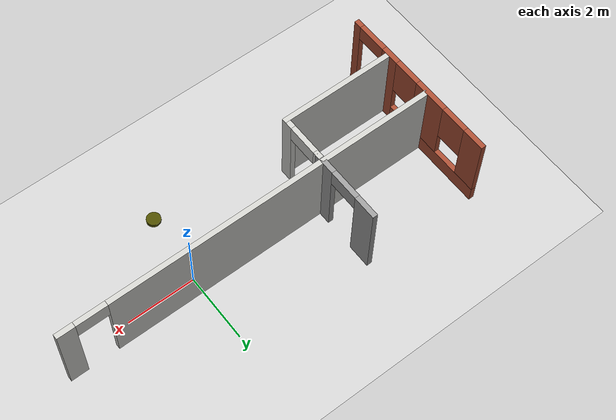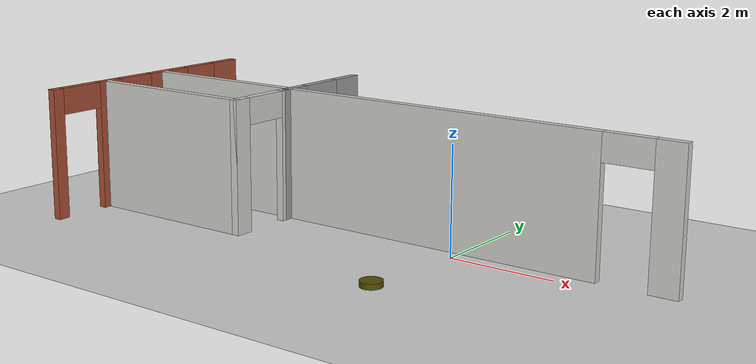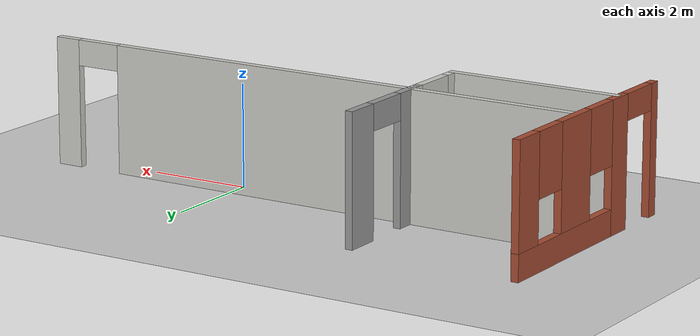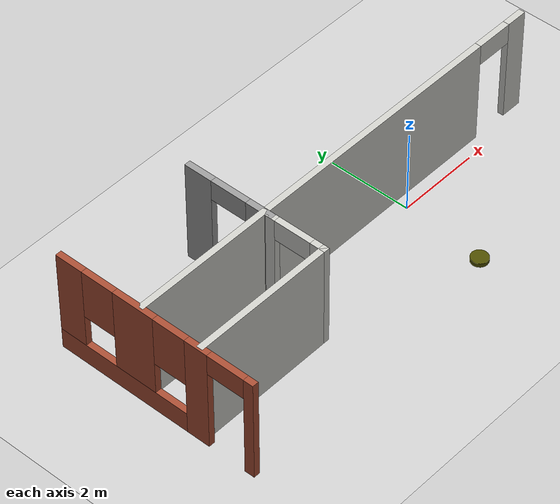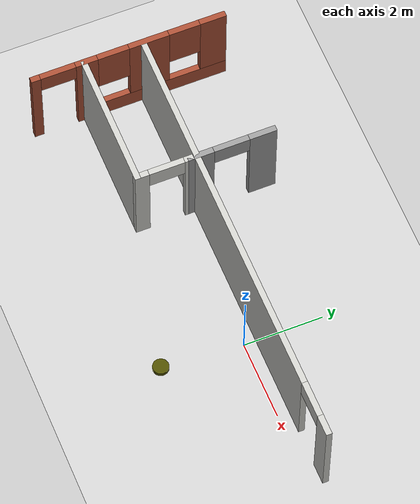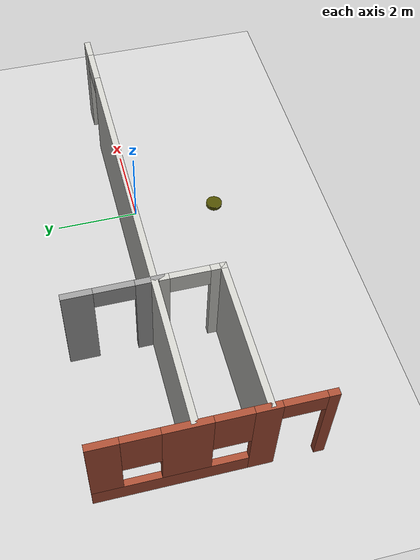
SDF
<sdf version="1.6">
 <world name="default">
  <model name="ground_plane">
   <static>1</static>
   <link name="link">
    <collision name="collision">
     <geometry><plane><normal>0 0 1</normal><size>100 100</size></plane></geometry>
     <surface><friction><ode><mu>100</mu><mu2>50</mu2></ode></friction></surface>
    </collision>
    <visual name="visual">
     <cast_shadows>0</cast_shadows>
     <geometry><plane><normal>0 0 1</normal><size>100 100</size></plane></geometry>
     <material>
      <script><uri>file://media/materials/scripts/gazebo.material</uri><name>Gazebo/Grey</name></script>
     </material>
    </visual>
   </link>
  </model>
  <model name="vacuumRobot_clone">
   <link name="link_1">
    <pose>0.031819 -5.91746 0.05875 0 -0 0</pose>
    <inertial>
     <mass>1</mass>
     <inertia><ixx>0.145833</ixx><ixy>0</ixy><ixz>0</ixz><iyy>0.145833</iyy><iyz>0</iyz><izz>0.125</izz></inertia>
    </inertial>
    <visual name="visual">
     <geometry><cylinder><radius>0.2</radius><length>0.1</length></cylinder></geometry>
     <material>
      <lighting>1</lighting>
      <script><uri>file://media/materials/scripts/gazebo.material</uri><name>Gazebo/Grey</name></script>
      <shader type="pixel"><normal_map>__default__</normal_map></shader>
      <ambient>0.3 0.3 0 1</ambient>
      <diffuse>0.7 0.7 0.7 1</diffuse>
      <specular>0.01 0.01 0.01 1</specular>
      <emissive>0 0 0 1</emissive>
     </material>
    </visual>
    <collision name="collision">
     <geometry><cylinder><radius>0.2</radius><length>0.1</length></cylinder></geometry>
     <surface>
      <friction>
       <ode><mu>1</mu><mu2>1</mu2><fdir1>0 0 0</fdir1><slip1>0</slip1><slip2>0</slip2></ode>
       <torsional>
        <coefficient>1</coefficient>
        <patch_radius>0</patch_radius>
        <surface_radius>0</surface_radius>
        <use_patch_radius>1</use_patch_radius>
        <ode><slip>0</slip></ode>
       </torsional>
      </friction>
      <bounce><restitution_coefficient>0</restitution_coefficient><threshold>1e+06</threshold></bounce>
      <contact>
       <collide_without_contact>0</collide_without_contact>
       <collide_without_contact_bitmask>1</collide_without_contact_bitmask>
       <collide_bitmask>1</collide_bitmask>
       <ode>
        <soft_cfm>0</soft_cfm>
        <soft_erp>0.2</soft_erp>
        <kp>1e+13</kp>
        <kd>1</kd>
        <max_vel>0.01</max_vel>
        <min_depth>0</min_depth>
       </ode>
       <bullet>
        <split_impulse>1</split_impulse>
        <split_impulse_penetration_threshold>-0.01</split_impulse_penetration_threshold>
        <soft_cfm>0</soft_cfm>
        <soft_erp>0.2</soft_erp>
        <kp>1e+13</kp>
        <kd>1</kd>
       </bullet>
      </contact>
     </surface>
    </collision>
   </link>
   <link name="link_2">
    <pose>0.201819 -5.91746 0.03875 0 -0 0</pose>
    <inertial>
     <mass>1</mass>
     <inertia><ixx>0.145833</ixx><ixy>0</ixy><ixz>0</ixz><iyy>0.145833</iyy><iyz>0</iyz><izz>0.125</izz></inertia>
    </inertial>
    <visual name="visual">
     <pose>0 0 0 1.5707 0 1.5707</pose>
     <geometry><cylinder><radius>0.04</radius><length>0.01</length></cylinder></geometry>
     <material>
      <lighting>1</lighting>
      <script><uri>file://media/materials/scripts/gazebo.material</uri><name>Gazebo/Grey</name></script>
      <shader type="pixel"><normal_map>__default__</normal_map></shader>
      <ambient>0.3 0.3 0.3 1</ambient>
      <diffuse>0.7 0.7 0.7 1</diffuse>
      <specular>0.01 0.01 0.01 1</specular>
      <emissive>0 0 0 1</emissive>
     </material>
    </visual>
    <collision name="collision">
     <pose>0 0 0 1.5707 0 1.5707</pose>
     <geometry><cylinder><radius>0.04</radius><length>0.01</length></cylinder></geometry>
     <surface>
      <friction>
       <ode><mu>1</mu><mu2>1</mu2><fdir1>0 0 0</fdir1><slip1>0</slip1><slip2>0</slip2></ode>
       <torsional>
        <coefficient>1</coefficient>
        <patch_radius>0</patch_radius>
        <surface_radius>0</surface_radius>
        <use_patch_radius>1</use_patch_radius>
        <ode><slip>0</slip></ode>
       </torsional>
      </friction>
      <bounce><restitution_coefficient>0</restitution_coefficient><threshold>1e+06</threshold></bounce>
      <contact>
       <collide_without_contact>0</collide_without_contact>
       <collide_without_contact_bitmask>1</collide_without_contact_bitmask>
       <collide_bitmask>1</collide_bitmask>
       <ode>
        <soft_cfm>0</soft_cfm>
        <soft_erp>0.2</soft_erp>
        <kp>1e+13</kp>
        <kd>1</kd>
        <max_vel>0.01</max_vel>
        <min_depth>0</min_depth>
       </ode>
       <bullet>
        <split_impulse>1</split_impulse>
        <split_impulse_penetration_threshold>-0.01</split_impulse_penetration_threshold>
        <soft_cfm>0</soft_cfm>
        <soft_erp>0.2</soft_erp>
        <kp>1e+13</kp>
        <kd>1</kd>
       </bullet>
      </contact>
     </surface>
    </collision>
   </link>
   <link name="link_2_clone">
    <pose>-0.138181 -5.91746 0.03875 0 -0 0</pose>
    <inertial>
     <mass>1</mass>
     <inertia><ixx>0.145833</ixx><ixy>0</ixy><ixz>0</ixz><iyy>0.145833</iyy><iyz>0</iyz><izz>0.125</izz></inertia>
    </inertial>
    <visual name="visual">
     <pose>0 0 0 1.5707 0 1.5707</pose>
     <geometry><cylinder><radius>0.04</radius><length>0.01</length></cylinder></geometry>
     <material>
      <lighting>1</lighting>
      <script><uri>file://media/materials/scripts/gazebo.material</uri><name>Gazebo/Grey</name></script>
      <shader type="pixel"><normal_map>__default__</normal_map></shader>
      <ambient>0.3 0.3 0.3 1</ambient>
      <diffuse>0.7 0.7 0.7 1</diffuse>
      <specular>0.01 0.01 0.01 1</specular>
      <emissive>0 0 0 1</emissive>
     </material>
    </visual>
    <collision name="collision">
     <pose>0 0 0 1.5707 0 1.5707</pose>
     <geometry><cylinder><radius>0.04</radius><length>0.01</length></cylinder></geometry>
     <surface>
      <friction>
       <ode><mu>1</mu><mu2>1</mu2><fdir1>0 0 0</fdir1><slip1>0</slip1><slip2>0</slip2></ode>
       <torsional>
        <coefficient>1</coefficient>
        <patch_radius>0</patch_radius>
        <surface_radius>0</surface_radius>
        <use_patch_radius>1</use_patch_radius>
        <ode><slip>0</slip></ode>
       </torsional>
      </friction>
      <bounce><restitution_coefficient>0</restitution_coefficient><threshold>1e+06</threshold></bounce>
      <contact>
       <collide_without_contact>0</collide_without_contact>
       <collide_without_contact_bitmask>1</collide_without_contact_bitmask>
       <collide_bitmask>1</collide_bitmask>
       <ode>
        <soft_cfm>0</soft_cfm>
        <soft_erp>0.2</soft_erp>
        <kp>1e+13</kp>
        <kd>1</kd>
        <max_vel>0.01</max_vel>
        <min_depth>0</min_depth>
       </ode>
       <bullet>
        <split_impulse>1</split_impulse>
        <split_impulse_penetration_threshold>-0.01</split_impulse_penetration_threshold>
        <soft_cfm>0</soft_cfm>
        <soft_erp>0.2</soft_erp>
        <kp>1e+13</kp>
        <kd>1</kd>
       </bullet>
      </contact>
     </surface>
    </collision>
   </link>
   <link name="link_3">
    <pose>0.031819 -5.74746 0.005 0 -0 0</pose>
    <inertial>
     <mass>1</mass>
     <inertia><ixx>0.1</ixx><ixy>0</ixy><ixz>0</ixz><iyy>0.1</iyy><iyz>0</iyz><izz>0.1</izz></inertia>
    </inertial>
    <visual name="visual">
     <geometry><sphere><radius>0.01</radius></sphere></geometry>
     <material>
      <lighting>1</lighting>
      <script><uri>file://media/materials/scripts/gazebo.material</uri><name>Gazebo/Grey</name></script>
      <shader type="pixel"><normal_map>__default__</normal_map></shader>
      <ambient>0.3 0.3 0.3 1</ambient>
      <diffuse>0.7 0.7 0.7 1</diffuse>
      <specular>0.01 0.01 0.01 1</specular>
      <emissive>0 0 0 1</emissive>
     </material>
    </visual>
    <collision name="collision">
     <geometry><sphere><radius>0.01</radius></sphere></geometry>
     <surface>
      <friction>
       <ode><mu>1</mu><mu2>1</mu2><fdir1>0 0 0</fdir1><slip1>0</slip1><slip2>0</slip2></ode>
       <torsional>
        <coefficient>1</coefficient>
        <patch_radius>0</patch_radius>
        <surface_radius>0</surface_radius>
        <use_patch_radius>1</use_patch_radius>
        <ode><slip>0</slip></ode>
       </torsional>
      </friction>
      <bounce><restitution_coefficient>0</restitution_coefficient><threshold>1e+06</threshold></bounce>
      <contact>
       <collide_without_contact>0</collide_without_contact>
       <collide_without_contact_bitmask>1</collide_without_contact_bitmask>
       <collide_bitmask>1</collide_bitmask>
       <ode>
        <soft_cfm>0</soft_cfm>
        <soft_erp>0.2</soft_erp>
        <kp>1e+13</kp>
        <kd>1</kd>
        <max_vel>0.01</max_vel>
        <min_depth>0</min_depth>
       </ode>
       <bullet>
        <split_impulse>1</split_impulse>
        <split_impulse_penetration_threshold>-0.01</split_impulse_penetration_threshold>
        <soft_cfm>0</soft_cfm>
        <soft_erp>0.2</soft_erp>
        <kp>1e+13</kp>
        <kd>1</kd>
       </bullet>
      </contact>
     </surface>
    </collision>
   </link>
   <joint name="link_1_JOINT_4" type="revolute">
    <parent>link_1</parent>
    <child>link_2</child>
    <axis>
     <xyz>1 0 0</xyz>
     <use_parent_model_frame>0</use_parent_model_frame>
     <limit>
      <lower>-1.79769e+308</lower>
      <upper>1.79769e+308</upper>
      <effort>-1</effort>
      <velocity>-1</velocity>
     </limit>
     <dynamics>
      <spring_reference>0</spring_reference>
      <spring_stiffness>0</spring_stiffness>
      <damping>0</damping>
      <friction>0</friction>
     </dynamics>
    </axis>
    <physics>
     <ode><limit><cfm>0</cfm><erp>0.2</erp></limit><suspension><cfm>0</cfm><erp>0.2</erp></suspension></ode>
    </physics>
   </joint>
   <joint name="link_1_JOINT_5" type="revolute">
    <parent>link_1</parent>
    <child>link_2_clone</child>
    <axis>
     <xyz>1 0 0</xyz>
     <use_parent_model_frame>0</use_parent_model_frame>
     <limit>
      <lower>-1.79769e+308</lower>
      <upper>1.79769e+308</upper>
      <effort>-1</effort>
      <velocity>-1</velocity>
     </limit>
     <dynamics>
      <spring_reference>0</spring_reference>
      <spring_stiffness>0</spring_stiffness>
      <damping>0</damping>
      <friction>0</friction>
     </dynamics>
    </axis>
    <physics>
     <ode><limit><cfm>0</cfm><erp>0.2</erp></limit><suspension><cfm>0</cfm><erp>0.2</erp></suspension></ode>
    </physics>
   </joint>
   <joint name="link_1_JOINT_6" type="revolute">
    <parent>link_1</parent>
    <child>link_3</child>
    <axis>
     <xyz>0 0 1</xyz>
     <use_parent_model_frame>0</use_parent_model_frame>
     <limit>
      <lower>-1.79769e+308</lower>
      <upper>1.79769e+308</upper>
      <effort>-1</effort>
      <velocity>-1</velocity>
     </limit>
     <dynamics>
      <spring_reference>0</spring_reference>
      <spring_stiffness>0</spring_stiffness>
      <damping>0</damping>
      <friction>0</friction>
     </dynamics>
    </axis>
    <physics>
     <ode><limit><cfm>0</cfm><erp>0.2</erp></limit><suspension><cfm>0</cfm><erp>0.2</erp></suspension></ode>
    </physics>
   </joint>
   <static>0</static>
   <pose>-0.204778 3.87633 0.131506 0.022012 2e-06 -0.000814</pose>
  </model>
  <model name="buildingMyHouse">
   <link name="Wall_34">
    <pose>-7.425 -0.022893 0 0 -0 1.5708</pose>
    <visual name="Wall_34_Visual_0">
     <pose>-2.38147 0 1.25 0 -0 0</pose>
     <geometry><box><size>0.237054 0.15 2.5</size></box></geometry>
     <material>
      <script><uri>file://media/materials/scripts/gazebo.material</uri><name>Gazebo/Bricks</name></script>
      <ambient>1 1 1 1</ambient>
      <shader type="pixel"/>
      <diffuse>1 1 1 1</diffuse>
      <specular>0.2 0.2 0.2 1</specular>
      <emissive>0 0 0 1</emissive>
     </material>
     <meta><layer>0</layer></meta>
    </visual>
    <visual name="Wall_34_Visual_1">
     <pose>-1.08246 0 1.25 0 -0 0</pose>
     <geometry><box><size>0.560967 0.15 2.5</size></box></geometry>
     <material>
      <script><uri>file://media/materials/scripts/gazebo.material</uri><name>Gazebo/Bricks</name></script>
      <ambient>1 1 1 1</ambient>
      <shader type="pixel"/>
      <diffuse>1 1 1 1</diffuse>
      <specular>0.2 0.2 0.2 1</specular>
      <emissive>0 0 0 1</emissive>
     </material>
     <meta><layer>0</layer></meta>
    </visual>
    <visual name="Wall_34_Visual_2">
     <pose>0.849011 0 0.25 0 -0 0</pose>
     <geometry><box><size>3.30198 0.15 0.5</size></box></geometry>
     <material>
      <script><uri>file://media/materials/scripts/gazebo.material</uri><name>Gazebo/Bricks</name></script>
      <ambient>1 1 1 1</ambient>
      <shader type="pixel"/>
      <diffuse>1 1 1 1</diffuse>
      <specular>0.2 0.2 0.2 1</specular>
      <emissive>0 0 0 1</emissive>
     </material>
     <meta><layer>0</layer></meta>
    </visual>
    <visual name="Wall_34_Visual_3">
     <pose>0.51168 0 1.5 0 -0 0</pose>
     <geometry><box><size>1.02732 0.15 2</size></box></geometry>
     <material>
      <script><uri>file://media/materials/scripts/gazebo.material</uri><name>Gazebo/Bricks</name></script>
      <ambient>1 1 1 1</ambient>
      <shader type="pixel"/>
      <diffuse>1 1 1 1</diffuse>
      <specular>0.2 0.2 0.2 1</specular>
      <emissive>0 0 0 1</emissive>
     </material>
     <meta><layer>0</layer></meta>
    </visual>
    <visual name="Wall_34_Visual_4">
     <pose>2.16267 0 1.5 0 -0 0</pose>
     <geometry><box><size>0.674661 0.15 2</size></box></geometry>
     <material>
      <script><uri>file://media/materials/scripts/gazebo.material</uri><name>Gazebo/Bricks</name></script>
      <ambient>1 1 1 1</ambient>
      <shader type="pixel"/>
      <diffuse>1 1 1 1</diffuse>
      <specular>0.2 0.2 0.2 1</specular>
      <emissive>0 0 0 1</emissive>
     </material>
     <meta><layer>0</layer></meta>
    </visual>
    <visual name="Wall_34_Visual_5">
     <pose>-0.401979 0 1.9 0 -0 0</pose>
     <geometry><box><size>0.8 0.15 1.2</size></box></geometry>
     <material>
      <script><uri>file://media/materials/scripts/gazebo.material</uri><name>Gazebo/Bricks</name></script>
      <ambient>1 1 1 1</ambient>
      <shader type="pixel"/>
      <diffuse>1 1 1 1</diffuse>
      <specular>0.2 0.2 0.2 1</specular>
      <emissive>0 0 0 1</emissive>
     </material>
     <meta><layer>0</layer></meta>
    </visual>
    <visual name="Wall_34_Visual_6">
     <pose>1.42534 0 1.9 0 -0 0</pose>
     <geometry><box><size>0.8 0.15 1.2</size></box></geometry>
     <material>
      <script><uri>file://media/materials/scripts/gazebo.material</uri><name>Gazebo/Bricks</name></script>
      <ambient>1 1 1 1</ambient>
      <shader type="pixel"/>
      <diffuse>1 1 1 1</diffuse>
      <specular>0.2 0.2 0.2 1</specular>
      <emissive>0 0 0 1</emissive>
     </material>
     <meta><layer>0</layer></meta>
    </visual>
    <visual name="Wall_34_Visual_7">
     <pose>-1.81295 0 2.25 0 -0 0</pose>
     <geometry><box><size>0.9 0.15 0.5</size></box></geometry>
     <material>
      <script><uri>file://media/materials/scripts/gazebo.material</uri><name>Gazebo/Bricks</name></script>
      <ambient>1 1 1 1</ambient>
      <shader type="pixel"/>
      <diffuse>1 1 1 1</diffuse>
      <specular>0.2 0.2 0.2 1</specular>
      <emissive>0 0 0 1</emissive>
     </material>
     <meta><layer>0</layer></meta>
    </visual>
    <collision name="Wall_34_Collision_0">
     <pose>-2.38147 0 1.25 0 -0 0</pose>
     <geometry><box><size>0.237054 0.15 2.5</size></box></geometry>
     <surface>
      <friction>
       <ode><mu>1</mu><mu2>1</mu2><fdir1>0 0 0</fdir1><slip1>0</slip1><slip2>0</slip2></ode>
       <torsional>
        <coefficient>1</coefficient>
        <patch_radius>0</patch_radius>
        <surface_radius>0</surface_radius>
        <use_patch_radius>1</use_patch_radius>
        <ode><slip>0</slip></ode>
       </torsional>
      </friction>
      <bounce><restitution_coefficient>0</restitution_coefficient><threshold>1e+06</threshold></bounce>
      <contact>
       <collide_without_contact>0</collide_without_contact>
       <collide_without_contact_bitmask>1</collide_without_contact_bitmask>
       <collide_bitmask>1</collide_bitmask>
       <ode>
        <soft_cfm>0</soft_cfm>
        <soft_erp>0.2</soft_erp>
        <kp>1e+13</kp>
        <kd>1</kd>
        <max_vel>0.01</max_vel>
        <min_depth>0</min_depth>
       </ode>
       <bullet>
        <split_impulse>1</split_impulse>
        <split_impulse_penetration_threshold>-0.01</split_impulse_penetration_threshold>
        <soft_cfm>0</soft_cfm>
        <soft_erp>0.2</soft_erp>
        <kp>1e+13</kp>
        <kd>1</kd>
       </bullet>
      </contact>
     </surface>
    </collision>
    <collision name="Wall_34_Collision_1">
     <pose>-1.08246 0 1.25 0 -0 0</pose>
     <geometry><box><size>0.560967 0.15 2.5</size></box></geometry>
     <surface>
      <friction>
       <ode><mu>1</mu><mu2>1</mu2><fdir1>0 0 0</fdir1><slip1>0</slip1><slip2>0</slip2></ode>
       <torsional>
        <coefficient>1</coefficient>
        <patch_radius>0</patch_radius>
        <surface_radius>0</surface_radius>
        <use_patch_radius>1</use_patch_radius>
        <ode><slip>0</slip></ode>
       </torsional>
      </friction>
      <bounce><restitution_coefficient>0</restitution_coefficient><threshold>1e+06</threshold></bounce>
      <contact>
       <collide_without_contact>0</collide_without_contact>
       <collide_without_contact_bitmask>1</collide_without_contact_bitmask>
       <collide_bitmask>1</collide_bitmask>
       <ode>
        <soft_cfm>0</soft_cfm>
        <soft_erp>0.2</soft_erp>
        <kp>1e+13</kp>
        <kd>1</kd>
        <max_vel>0.01</max_vel>
        <min_depth>0</min_depth>
       </ode>
       <bullet>
        <split_impulse>1</split_impulse>
        <split_impulse_penetration_threshold>-0.01</split_impulse_penetration_threshold>
        <soft_cfm>0</soft_cfm>
        <soft_erp>0.2</soft_erp>
        <kp>1e+13</kp>
        <kd>1</kd>
       </bullet>
      </contact>
     </surface>
    </collision>
    <collision name="Wall_34_Collision_2">
     <pose>0.849011 0 0.25 0 -0 0</pose>
     <geometry><box><size>3.30198 0.15 0.5</size></box></geometry>
     <surface>
      <friction>
       <ode><mu>1</mu><mu2>1</mu2><fdir1>0 0 0</fdir1><slip1>0</slip1><slip2>0</slip2></ode>
       <torsional>
        <coefficient>1</coefficient>
        <patch_radius>0</patch_radius>
        <surface_radius>0</surface_radius>
        <use_patch_radius>1</use_patch_radius>
        <ode><slip>0</slip></ode>
       </torsional>
      </friction>
      <bounce><restitution_coefficient>0</restitution_coefficient><threshold>1e+06</threshold></bounce>
      <contact>
       <collide_without_contact>0</collide_without_contact>
       <collide_without_contact_bitmask>1</collide_without_contact_bitmask>
       <collide_bitmask>1</collide_bitmask>
       <ode>
        <soft_cfm>0</soft_cfm>
        <soft_erp>0.2</soft_erp>
        <kp>1e+13</kp>
        <kd>1</kd>
        <max_vel>0.01</max_vel>
        <min_depth>0</min_depth>
       </ode>
       <bullet>
        <split_impulse>1</split_impulse>
        <split_impulse_penetration_threshold>-0.01</split_impulse_penetration_threshold>
        <soft_cfm>0</soft_cfm>
        <soft_erp>0.2</soft_erp>
        <kp>1e+13</kp>
        <kd>1</kd>
       </bullet>
      </contact>
     </surface>
    </collision>
    <collision name="Wall_34_Collision_3">
     <pose>0.51168 0 1.5 0 -0 0</pose>
     <geometry><box><size>1.02732 0.15 2</size></box></geometry>
     <surface>
      <friction>
       <ode><mu>1</mu><mu2>1</mu2><fdir1>0 0 0</fdir1><slip1>0</slip1><slip2>0</slip2></ode>
       <torsional>
        <coefficient>1</coefficient>
        <patch_radius>0</patch_radius>
        <surface_radius>0</surface_radius>
        <use_patch_radius>1</use_patch_radius>
        <ode><slip>0</slip></ode>
       </torsional>
      </friction>
      <bounce><restitution_coefficient>0</restitution_coefficient><threshold>1e+06</threshold></bounce>
      <contact>
       <collide_without_contact>0</collide_without_contact>
       <collide_without_contact_bitmask>1</collide_without_contact_bitmask>
       <collide_bitmask>1</collide_bitmask>
       <ode>
        <soft_cfm>0</soft_cfm>
        <soft_erp>0.2</soft_erp>
        <kp>1e+13</kp>
        <kd>1</kd>
        <max_vel>0.01</max_vel>
        <min_depth>0</min_depth>
       </ode>
       <bullet>
        <split_impulse>1</split_impulse>
        <split_impulse_penetration_threshold>-0.01</split_impulse_penetration_threshold>
        <soft_cfm>0</soft_cfm>
        <soft_erp>0.2</soft_erp>
        <kp>1e+13</kp>
        <kd>1</kd>
       </bullet>
      </contact>
     </surface>
    </collision>
    <collision name="Wall_34_Collision_4">
     <pose>2.16267 0 1.5 0 -0 0</pose>
     <geometry><box><size>0.674661 0.15 2</size></box></geometry>
     <surface>
      <friction>
       <ode><mu>1</mu><mu2>1</mu2><fdir1>0 0 0</fdir1><slip1>0</slip1><slip2>0</slip2></ode>
       <torsional>
        <coefficient>1</coefficient>
        <patch_radius>0</patch_radius>
        <surface_radius>0</surface_radius>
        <use_patch_radius>1</use_patch_radius>
        <ode><slip>0</slip></ode>
       </torsional>
      </friction>
      <bounce><restitution_coefficient>0</restitution_coefficient><threshold>1e+06</threshold></bounce>
      <contact>
       <collide_without_contact>0</collide_without_contact>
       <collide_without_contact_bitmask>1</collide_without_contact_bitmask>
       <collide_bitmask>1</collide_bitmask>
       <ode>
        <soft_cfm>0</soft_cfm>
        <soft_erp>0.2</soft_erp>
        <kp>1e+13</kp>
        <kd>1</kd>
        <max_vel>0.01</max_vel>
        <min_depth>0</min_depth>
       </ode>
       <bullet>
        <split_impulse>1</split_impulse>
        <split_impulse_penetration_threshold>-0.01</split_impulse_penetration_threshold>
        <soft_cfm>0</soft_cfm>
        <soft_erp>0.2</soft_erp>
        <kp>1e+13</kp>
        <kd>1</kd>
       </bullet>
      </contact>
     </surface>
    </collision>
    <collision name="Wall_34_Collision_5">
     <pose>-0.401979 0 1.9 0 -0 0</pose>
     <geometry><box><size>0.8 0.15 1.2</size></box></geometry>
     <surface>
      <friction>
       <ode><mu>1</mu><mu2>1</mu2><fdir1>0 0 0</fdir1><slip1>0</slip1><slip2>0</slip2></ode>
       <torsional>
        <coefficient>1</coefficient>
        <patch_radius>0</patch_radius>
        <surface_radius>0</surface_radius>
        <use_patch_radius>1</use_patch_radius>
        <ode><slip>0</slip></ode>
       </torsional>
      </friction>
      <bounce><restitution_coefficient>0</restitution_coefficient><threshold>1e+06</threshold></bounce>
      <contact>
       <collide_without_contact>0</collide_without_contact>
       <collide_without_contact_bitmask>1</collide_without_contact_bitmask>
       <collide_bitmask>1</collide_bitmask>
       <ode>
        <soft_cfm>0</soft_cfm>
        <soft_erp>0.2</soft_erp>
        <kp>1e+13</kp>
        <kd>1</kd>
        <max_vel>0.01</max_vel>
        <min_depth>0</min_depth>
       </ode>
       <bullet>
        <split_impulse>1</split_impulse>
        <split_impulse_penetration_threshold>-0.01</split_impulse_penetration_threshold>
        <soft_cfm>0</soft_cfm>
        <soft_erp>0.2</soft_erp>
        <kp>1e+13</kp>
        <kd>1</kd>
       </bullet>
      </contact>
     </surface>
    </collision>
    <collision name="Wall_34_Collision_6">
     <pose>1.42534 0 1.9 0 -0 0</pose>
     <geometry><box><size>0.8 0.15 1.2</size></box></geometry>
     <surface>
      <friction>
       <ode><mu>1</mu><mu2>1</mu2><fdir1>0 0 0</fdir1><slip1>0</slip1><slip2>0</slip2></ode>
       <torsional>
        <coefficient>1</coefficient>
        <patch_radius>0</patch_radius>
        <surface_radius>0</surface_radius>
        <use_patch_radius>1</use_patch_radius>
        <ode><slip>0</slip></ode>
       </torsional>
      </friction>
      <bounce><restitution_coefficient>0</restitution_coefficient><threshold>1e+06</threshold></bounce>
      <contact>
       <collide_without_contact>0</collide_without_contact>
       <collide_without_contact_bitmask>1</collide_without_contact_bitmask>
       <collide_bitmask>1</collide_bitmask>
       <ode>
        <soft_cfm>0</soft_cfm>
        <soft_erp>0.2</soft_erp>
        <kp>1e+13</kp>
        <kd>1</kd>
        <max_vel>0.01</max_vel>
        <min_depth>0</min_depth>
       </ode>
       <bullet>
        <split_impulse>1</split_impulse>
        <split_impulse_penetration_threshold>-0.01</split_impulse_penetration_threshold>
        <soft_cfm>0</soft_cfm>
        <soft_erp>0.2</soft_erp>
        <kp>1e+13</kp>
        <kd>1</kd>
       </bullet>
      </contact>
     </surface>
    </collision>
    <collision name="Wall_34_Collision_7">
     <pose>-1.81295 0 2.25 0 -0 0</pose>
     <geometry><box><size>0.9 0.15 0.5</size></box></geometry>
     <surface>
      <friction>
       <ode><mu>1</mu><mu2>1</mu2><fdir1>0 0 0</fdir1><slip1>0</slip1><slip2>0</slip2></ode>
       <torsional>
        <coefficient>1</coefficient>
        <patch_radius>0</patch_radius>
        <surface_radius>0</surface_radius>
        <use_patch_radius>1</use_patch_radius>
        <ode><slip>0</slip></ode>
       </torsional>
      </friction>
      <bounce><restitution_coefficient>0</restitution_coefficient><threshold>1e+06</threshold></bounce>
      <contact>
       <collide_without_contact>0</collide_without_contact>
       <collide_without_contact_bitmask>1</collide_without_contact_bitmask>
       <collide_bitmask>1</collide_bitmask>
       <ode>
        <soft_cfm>0</soft_cfm>
        <soft_erp>0.2</soft_erp>
        <kp>1e+13</kp>
        <kd>1</kd>
        <max_vel>0.01</max_vel>
        <min_depth>0</min_depth>
       </ode>
       <bullet>
        <split_impulse>1</split_impulse>
        <split_impulse_penetration_threshold>-0.01</split_impulse_penetration_threshold>
        <soft_cfm>0</soft_cfm>
        <soft_erp>0.2</soft_erp>
        <kp>1e+13</kp>
        <kd>1</kd>
       </bullet>
      </contact>
     </surface>
    </collision>
   </link>
   <link name="Wall_40">
    <pose>-1.80848 0.347893 0 0 -0 0</pose>
    <visual name="Wall_40_Visual_0">
     <pose>-0.709013 0 1.25 0 -0 0</pose>
     <geometry><box><size>9.83197 0.15 2.5</size></box></geometry>
     <material>
      <script><uri>file://media/materials/scripts/gazebo.material</uri><name>Gazebo/CeilingTiled</name></script>
      <ambient>1 1 1 1</ambient>
      <shader type="pixel"/>
      <diffuse>1 1 1 1</diffuse>
      <specular>0 0 0 1</specular>
      <emissive>0 0 0 1</emissive>
     </material>
     <meta><layer>0</layer></meta>
    </visual>
    <visual name="Wall_40_Visual_1">
     <pose>5.36599 0 1.25 0 -0 0</pose>
     <geometry><box><size>0.518027 0.15 2.5</size></box></geometry>
     <material>
      <script><uri>file://media/materials/scripts/gazebo.material</uri><name>Gazebo/CeilingTiled</name></script>
      <ambient>1 1 1 1</ambient>
      <shader type="pixel"/>
      <diffuse>1 1 1 1</diffuse>
      <specular>0 0 0 1</specular>
      <emissive>0 0 0 1</emissive>
     </material>
     <meta><layer>0</layer></meta>
    </visual>
    <visual name="Wall_40_Visual_2">
     <pose>4.65697 0 2.25 0 -0 0</pose>
     <geometry><box><size>0.9 0.15 0.5</size></box></geometry>
     <material>
      <script><uri>file://media/materials/scripts/gazebo.material</uri><name>Gazebo/CeilingTiled</name></script>
      <ambient>1 1 1 1</ambient>
      <shader type="pixel"/>
      <diffuse>1 1 1 1</diffuse>
      <specular>0 0 0 1</specular>
      <emissive>0 0 0 1</emissive>
     </material>
     <meta><layer>0</layer></meta>
    </visual>
    <collision name="Wall_40_Collision_0">
     <pose>-0.709013 0 1.25 0 -0 0</pose>
     <geometry><box><size>9.83197 0.15 2.5</size></box></geometry>
     <surface>
      <friction>
       <ode><mu>1</mu><mu2>1</mu2><fdir1>0 0 0</fdir1><slip1>0</slip1><slip2>0</slip2></ode>
       <torsional>
        <coefficient>1</coefficient>
        <patch_radius>0</patch_radius>
        <surface_radius>0</surface_radius>
        <use_patch_radius>1</use_patch_radius>
        <ode><slip>0</slip></ode>
       </torsional>
      </friction>
      <bounce><restitution_coefficient>0</restitution_coefficient><threshold>1e+06</threshold></bounce>
      <contact>
       <collide_without_contact>0</collide_without_contact>
       <collide_without_contact_bitmask>1</collide_without_contact_bitmask>
       <collide_bitmask>1</collide_bitmask>
       <ode>
        <soft_cfm>0</soft_cfm>
        <soft_erp>0.2</soft_erp>
        <kp>1e+13</kp>
        <kd>1</kd>
        <max_vel>0.01</max_vel>
        <min_depth>0</min_depth>
       </ode>
       <bullet>
        <split_impulse>1</split_impulse>
        <split_impulse_penetration_threshold>-0.01</split_impulse_penetration_threshold>
        <soft_cfm>0</soft_cfm>
        <soft_erp>0.2</soft_erp>
        <kp>1e+13</kp>
        <kd>1</kd>
       </bullet>
      </contact>
     </surface>
    </collision>
    <collision name="Wall_40_Collision_1">
     <pose>5.36599 0 1.25 0 -0 0</pose>
     <geometry><box><size>0.518027 0.15 2.5</size></box></geometry>
     <surface>
      <friction>
       <ode><mu>1</mu><mu2>1</mu2><fdir1>0 0 0</fdir1><slip1>0</slip1><slip2>0</slip2></ode>
       <torsional>
        <coefficient>1</coefficient>
        <patch_radius>0</patch_radius>
        <surface_radius>0</surface_radius>
        <use_patch_radius>1</use_patch_radius>
        <ode><slip>0</slip></ode>
       </torsional>
      </friction>
      <bounce><restitution_coefficient>0</restitution_coefficient><threshold>1e+06</threshold></bounce>
      <contact>
       <collide_without_contact>0</collide_without_contact>
       <collide_without_contact_bitmask>1</collide_without_contact_bitmask>
       <collide_bitmask>1</collide_bitmask>
       <ode>
        <soft_cfm>0</soft_cfm>
        <soft_erp>0.2</soft_erp>
        <kp>1e+13</kp>
        <kd>1</kd>
        <max_vel>0.01</max_vel>
        <min_depth>0</min_depth>
       </ode>
       <bullet>
        <split_impulse>1</split_impulse>
        <split_impulse_penetration_threshold>-0.01</split_impulse_penetration_threshold>
        <soft_cfm>0</soft_cfm>
        <soft_erp>0.2</soft_erp>
        <kp>1e+13</kp>
        <kd>1</kd>
       </bullet>
      </contact>
     </surface>
    </collision>
    <collision name="Wall_40_Collision_2">
     <pose>4.65697 0 2.25 0 -0 0</pose>
     <geometry><box><size>0.9 0.15 0.5</size></box></geometry>
     <surface>
      <friction>
       <ode><mu>1</mu><mu2>1</mu2><fdir1>0 0 0</fdir1><slip1>0</slip1><slip2>0</slip2></ode>
       <torsional>
        <coefficient>1</coefficient>
        <patch_radius>0</patch_radius>
        <surface_radius>0</surface_radius>
        <use_patch_radius>1</use_patch_radius>
        <ode><slip>0</slip></ode>
       </torsional>
      </friction>
      <bounce><restitution_coefficient>0</restitution_coefficient><threshold>1e+06</threshold></bounce>
      <contact>
       <collide_without_contact>0</collide_without_contact>
       <collide_without_contact_bitmask>1</collide_without_contact_bitmask>
       <collide_bitmask>1</collide_bitmask>
       <ode>
        <soft_cfm>0</soft_cfm>
        <soft_erp>0.2</soft_erp>
        <kp>1e+13</kp>
        <kd>1</kd>
        <max_vel>0.01</max_vel>
        <min_depth>0</min_depth>
       </ode>
       <bullet>
        <split_impulse>1</split_impulse>
        <split_impulse_penetration_threshold>-0.01</split_impulse_penetration_threshold>
        <soft_cfm>0</soft_cfm>
        <soft_erp>0.2</soft_erp>
        <kp>1e+13</kp>
        <kd>1</kd>
       </bullet>
      </contact>
     </surface>
    </collision>
   </link>
   <link name="Wall_45">
    <pose>-5.70023 -1.16505 0 0 -0 0</pose>
    <visual name="Wall_45_Visual">
     <pose>0 0 1.25 0 -0 0</pose>
     <geometry><box><size>3.5 0.15 2.5</size></box></geometry>
     <material>
      <script><uri>file://media/materials/scripts/gazebo.material</uri><name>Gazebo/CeilingTiled</name></script>
      <ambient>1 1 1 1</ambient>
      <shader type="pixel"/>
      <diffuse>1 1 1 1</diffuse>
      <specular>0 0 0 1</specular>
      <emissive>0 0 0 1</emissive>
     </material>
     <meta><layer>0</layer></meta>
    </visual>
    <collision name="Wall_45_Collision">
     <pose>0 0 1.25 0 -0 0</pose>
     <geometry><box><size>3.5 0.15 2.5</size></box></geometry>
     <surface>
      <friction>
       <ode><mu>1</mu><mu2>1</mu2><fdir1>0 0 0</fdir1><slip1>0</slip1><slip2>0</slip2></ode>
       <torsional>
        <coefficient>1</coefficient>
        <patch_radius>0</patch_radius>
        <surface_radius>0</surface_radius>
        <use_patch_radius>1</use_patch_radius>
        <ode><slip>0</slip></ode>
       </torsional>
      </friction>
      <bounce><restitution_coefficient>0</restitution_coefficient><threshold>1e+06</threshold></bounce>
      <contact>
       <collide_without_contact>0</collide_without_contact>
       <collide_without_contact_bitmask>1</collide_without_contact_bitmask>
       <collide_bitmask>1</collide_bitmask>
       <ode>
        <soft_cfm>0</soft_cfm>
        <soft_erp>0.2</soft_erp>
        <kp>1e+13</kp>
        <kd>1</kd>
        <max_vel>0.01</max_vel>
        <min_depth>0</min_depth>
       </ode>
       <bullet>
        <split_impulse>1</split_impulse>
        <split_impulse_penetration_threshold>-0.01</split_impulse_penetration_threshold>
        <soft_cfm>0</soft_cfm>
        <soft_erp>0.2</soft_erp>
        <kp>1e+13</kp>
        <kd>1</kd>
       </bullet>
      </contact>
     </surface>
    </collision>
   </link>
   <link name="Wall_46">
    <pose>-4.02523 -0.490052 0 0 -0 1.5708</pose>
    <inertial>
     <mass>1</mass>
     <inertia><ixx>1</ixx><ixy>0</ixy><ixz>0</ixz><iyy>1</iyy><iyz>0</iyz><izz>1</izz></inertia>
    </inertial>
    <visual name="Wall_46_Visual_0">
     <pose>-0.56741 0 1.25 0 -0 0</pose>
     <geometry><box><size>0.365179 0.15 2.5</size></box></geometry>
     <material>
      <script><uri>file://media/materials/scripts/gazebo.material</uri><name>Gazebo/CeilingTiled</name></script>
      <ambient>0.9 0 0 1</ambient>
      <shader type="pixel"><normal_map>__default__</normal_map></shader>
      <diffuse>0.9 0 0 1</diffuse>
      <specular>0.9 0 0 1</specular>
      <emissive>0 0 0 1</emissive>
     </material>
     <meta><layer>0</layer></meta>
    </visual>
    <visual name="Wall_46_Visual_1">
     <pose>0.63259 0 1.25 0 -0 0</pose>
     <geometry><box><size>0.234821 0.15 2.5</size></box></geometry>
     <material>
      <script><uri>file://media/materials/scripts/gazebo.material</uri><name>Gazebo/CeilingTiled</name></script>
      <ambient>0.9 0 0 1</ambient>
      <shader type="pixel"><normal_map>__default__</normal_map></shader>
      <diffuse>0.9 0 0 1</diffuse>
      <specular>0 0 0 1</specular>
      <emissive>0 0 0 1</emissive>
     </material>
     <meta><layer>0</layer></meta>
    </visual>
    <visual name="Wall_46_Visual_2">
     <pose>0.065179 0 2.25 0 -0 0</pose>
     <geometry><box><size>0.9 0.15 0.5</size></box></geometry>
     <material>
      <script><uri>file://media/materials/scripts/gazebo.material</uri><name>Gazebo/CeilingTiled</name></script>
      <ambient>0.9 0 0 1</ambient>
      <shader type="pixel"><normal_map>__default__</normal_map></shader>
      <diffuse>0.9 0 0 1</diffuse>
      <specular>0 0 0 1</specular>
      <emissive>0 0 0 1</emissive>
     </material>
     <meta><layer>0</layer></meta>
    </visual>
    <collision name="Wall_46_Collision_2">
     <pose>0.065179 0 2.25 0 -0 0</pose>
     <geometry><box><size>0.9 0.15 0.5</size></box></geometry>
     <surface>
      <friction>
       <ode><mu>1</mu><mu2>1</mu2><fdir1>0 0 0</fdir1><slip1>0</slip1><slip2>0</slip2></ode>
       <torsional>
        <coefficient>1</coefficient>
        <patch_radius>0</patch_radius>
        <surface_radius>0</surface_radius>
        <use_patch_radius>1</use_patch_radius>
        <ode><slip>0</slip></ode>
       </torsional>
      </friction>
      <bounce><restitution_coefficient>0</restitution_coefficient><threshold>1e+06</threshold></bounce>
      <contact>
       <collide_without_contact>0</collide_without_contact>
       <collide_without_contact_bitmask>1</collide_without_contact_bitmask>
       <collide_bitmask>1</collide_bitmask>
       <ode>
        <soft_cfm>0</soft_cfm>
        <soft_erp>0.2</soft_erp>
        <kp>1e+13</kp>
        <kd>1</kd>
        <max_vel>0.01</max_vel>
        <min_depth>0</min_depth>
       </ode>
       <bullet>
        <split_impulse>1</split_impulse>
        <split_impulse_penetration_threshold>-0.01</split_impulse_penetration_threshold>
        <soft_cfm>0</soft_cfm>
        <soft_erp>0.2</soft_erp>
        <kp>1e+13</kp>
        <kd>1</kd>
       </bullet>
      </contact>
     </surface>
    </collision>
    <collision name="Wall_46_Collision_0">
     <pose>-0.56741 0 1.25 0 -0 0</pose>
     <geometry><box><size>0.365179 0.15 2.5</size></box></geometry>
     <surface>
      <friction>
       <ode><mu>1</mu><mu2>1</mu2><fdir1>0 0 0</fdir1><slip1>0</slip1><slip2>0</slip2></ode>
       <torsional>
        <coefficient>1</coefficient>
        <patch_radius>0</patch_radius>
        <surface_radius>0</surface_radius>
        <use_patch_radius>1</use_patch_radius>
        <ode><slip>0</slip></ode>
       </torsional>
      </friction>
      <bounce><restitution_coefficient>0</restitution_coefficient><threshold>1e+06</threshold></bounce>
      <contact>
       <collide_without_contact>0</collide_without_contact>
       <collide_without_contact_bitmask>1</collide_without_contact_bitmask>
       <collide_bitmask>1</collide_bitmask>
       <ode>
        <soft_cfm>0</soft_cfm>
        <soft_erp>0.2</soft_erp>
        <kp>1e+13</kp>
        <kd>1</kd>
        <max_vel>0.01</max_vel>
        <min_depth>0</min_depth>
       </ode>
       <bullet>
        <split_impulse>1</split_impulse>
        <split_impulse_penetration_threshold>-0.01</split_impulse_penetration_threshold>
        <soft_cfm>0</soft_cfm>
        <soft_erp>0.2</soft_erp>
        <kp>1e+13</kp>
        <kd>1</kd>
       </bullet>
      </contact>
     </surface>
    </collision>
    <collision name="Wall_46_Collision_1">
     <pose>0.63259 0 1.25 0 -0 0</pose>
     <geometry><box><size>0.234821 0.15 2.5</size></box></geometry>
     <surface>
      <friction>
       <ode><mu>1</mu><mu2>1</mu2><fdir1>0 0 0</fdir1><slip1>0</slip1><slip2>0</slip2></ode>
       <torsional>
        <coefficient>1</coefficient>
        <patch_radius>0</patch_radius>
        <surface_radius>0</surface_radius>
        <use_patch_radius>1</use_patch_radius>
        <ode><slip>0</slip></ode>
       </torsional>
      </friction>
      <bounce><restitution_coefficient>0</restitution_coefficient><threshold>1e+06</threshold></bounce>
      <contact>
       <collide_without_contact>0</collide_without_contact>
       <collide_without_contact_bitmask>1</collide_without_contact_bitmask>
       <collide_bitmask>1</collide_bitmask>
       <ode>
        <soft_cfm>0</soft_cfm>
        <soft_erp>0.2</soft_erp>
        <kp>1e+13</kp>
        <kd>1</kd>
        <max_vel>0.01</max_vel>
        <min_depth>0</min_depth>
       </ode>
       <bullet>
        <split_impulse>1</split_impulse>
        <split_impulse_penetration_threshold>-0.01</split_impulse_penetration_threshold>
        <soft_cfm>0</soft_cfm>
        <soft_erp>0.2</soft_erp>
        <kp>1e+13</kp>
        <kd>1</kd>
       </bullet>
      </contact>
     </surface>
    </collision>
   </link>
   <link name="Wall_47">
    <pose>-4.02523 1.23495 0 0 -0 1.5708</pose>
    <visual name="Wall_47_Visual_0">
     <pose>-0.796274 0 1.25 0 -0 0</pose>
     <geometry><box><size>0.657453 0.15 2.5</size></box></geometry>
     <material>
      <script><uri>file://media/materials/scripts/gazebo.material</uri><name>Gazebo/Grey</name></script>
      <ambient>1 1 1 1</ambient>
      <shader type="pixel"/>
      <diffuse>0.7 0.7 0.7 1</diffuse>
      <specular>0.01 0.01 0.01 1</specular>
      <emissive>0 0 0 1</emissive>
     </material>
     <meta><layer>0</layer></meta>
    </visual>
    <visual name="Wall_47_Visual_1">
     <pose>0.778726 0 1.25 0 -0 0</pose>
     <geometry><box><size>0.692547 0.15 2.5</size></box></geometry>
     <material>
      <script><uri>file://media/materials/scripts/gazebo.material</uri><name>Gazebo/Grey</name></script>
      <ambient>1 1 1 1</ambient>
      <shader type="pixel"/>
      <diffuse>0.7 0.7 0.7 1</diffuse>
      <specular>0.01 0.01 0.01 1</specular>
      <emissive>0 0 0 1</emissive>
     </material>
     <meta><layer>0</layer></meta>
    </visual>
    <visual name="Wall_47_Visual_2">
     <pose>-0.017547 0 2.25 0 -0 0</pose>
     <geometry><box><size>0.9 0.15 0.5</size></box></geometry>
     <material>
      <script><uri>file://media/materials/scripts/gazebo.material</uri><name>Gazebo/Grey</name></script>
      <ambient>1 1 1 1</ambient>
      <shader type="pixel"/>
      <diffuse>0.7 0.7 0.7 1</diffuse>
      <specular>0.01 0.01 0.01 1</specular>
      <emissive>0 0 0 1</emissive>
     </material>
     <meta><layer>0</layer></meta>
    </visual>
    <collision name="Wall_47_Collision_0">
     <pose>-0.796274 0 1.25 0 -0 0</pose>
     <geometry><box><size>0.657453 0.15 2.5</size></box></geometry>
     <surface>
      <friction>
       <ode><mu>1</mu><mu2>1</mu2><fdir1>0 0 0</fdir1><slip1>0</slip1><slip2>0</slip2></ode>
       <torsional>
        <coefficient>1</coefficient>
        <patch_radius>0</patch_radius>
        <surface_radius>0</surface_radius>
        <use_patch_radius>1</use_patch_radius>
        <ode><slip>0</slip></ode>
       </torsional>
      </friction>
      <bounce><restitution_coefficient>0</restitution_coefficient><threshold>1e+06</threshold></bounce>
      <contact>
       <collide_without_contact>0</collide_without_contact>
       <collide_without_contact_bitmask>1</collide_without_contact_bitmask>
       <collide_bitmask>1</collide_bitmask>
       <ode>
        <soft_cfm>0</soft_cfm>
        <soft_erp>0.2</soft_erp>
        <kp>1e+13</kp>
        <kd>1</kd>
        <max_vel>0.01</max_vel>
        <min_depth>0</min_depth>
       </ode>
       <bullet>
        <split_impulse>1</split_impulse>
        <split_impulse_penetration_threshold>-0.01</split_impulse_penetration_threshold>
        <soft_cfm>0</soft_cfm>
        <soft_erp>0.2</soft_erp>
        <kp>1e+13</kp>
        <kd>1</kd>
       </bullet>
      </contact>
     </surface>
    </collision>
    <collision name="Wall_47_Collision_1">
     <pose>0.778726 0 1.25 0 -0 0</pose>
     <geometry><box><size>0.692547 0.15 2.5</size></box></geometry>
     <surface>
      <friction>
       <ode><mu>1</mu><mu2>1</mu2><fdir1>0 0 0</fdir1><slip1>0</slip1><slip2>0</slip2></ode>
       <torsional>
        <coefficient>1</coefficient>
        <patch_radius>0</patch_radius>
        <surface_radius>0</surface_radius>
        <use_patch_radius>1</use_patch_radius>
        <ode><slip>0</slip></ode>
       </torsional>
      </friction>
      <bounce><restitution_coefficient>0</restitution_coefficient><threshold>1e+06</threshold></bounce>
      <contact>
       <collide_without_contact>0</collide_without_contact>
       <collide_without_contact_bitmask>1</collide_without_contact_bitmask>
       <collide_bitmask>1</collide_bitmask>
       <ode>
        <soft_cfm>0</soft_cfm>
        <soft_erp>0.2</soft_erp>
        <kp>1e+13</kp>
        <kd>1</kd>
        <max_vel>0.01</max_vel>
        <min_depth>0</min_depth>
       </ode>
       <bullet>
        <split_impulse>1</split_impulse>
        <split_impulse_penetration_threshold>-0.01</split_impulse_penetration_threshold>
        <soft_cfm>0</soft_cfm>
        <soft_erp>0.2</soft_erp>
        <kp>1e+13</kp>
        <kd>1</kd>
       </bullet>
      </contact>
     </surface>
    </collision>
    <collision name="Wall_47_Collision_2">
     <pose>-0.017547 0 2.25 0 -0 0</pose>
     <geometry><box><size>0.9 0.15 0.5</size></box></geometry>
     <surface>
      <friction>
       <ode><mu>1</mu><mu2>1</mu2><fdir1>0 0 0</fdir1><slip1>0</slip1><slip2>0</slip2></ode>
       <torsional>
        <coefficient>1</coefficient>
        <patch_radius>0</patch_radius>
        <surface_radius>0</surface_radius>
        <use_patch_radius>1</use_patch_radius>
        <ode><slip>0</slip></ode>
       </torsional>
      </friction>
      <bounce><restitution_coefficient>0</restitution_coefficient><threshold>1e+06</threshold></bounce>
      <contact>
       <collide_without_contact>0</collide_without_contact>
       <collide_without_contact_bitmask>1</collide_without_contact_bitmask>
       <collide_bitmask>1</collide_bitmask>
       <ode>
        <soft_cfm>0</soft_cfm>
        <soft_erp>0.2</soft_erp>
        <kp>1e+13</kp>
        <kd>1</kd>
        <max_vel>0.01</max_vel>
        <min_depth>0</min_depth>
       </ode>
       <bullet>
        <split_impulse>1</split_impulse>
        <split_impulse_penetration_threshold>-0.01</split_impulse_penetration_threshold>
        <soft_cfm>0</soft_cfm>
        <soft_erp>0.2</soft_erp>
        <kp>1e+13</kp>
        <kd>1</kd>
       </bullet>
      </contact>
     </surface>
    </collision>
   </link>
   <static>1</static>
   <pose>0.166247 0.02171 0 0 -0 0</pose>
  </model>
 </world>
</sdf>
